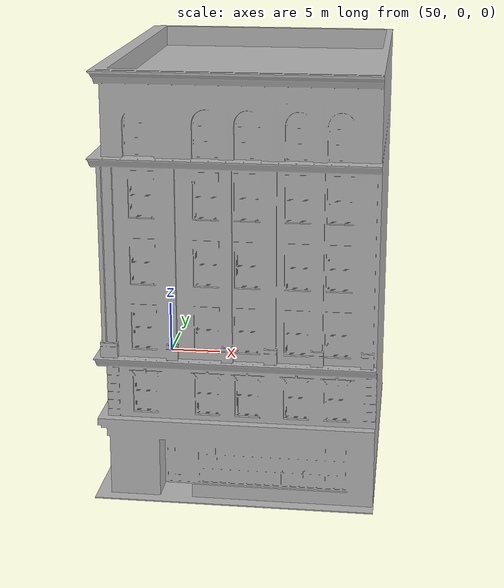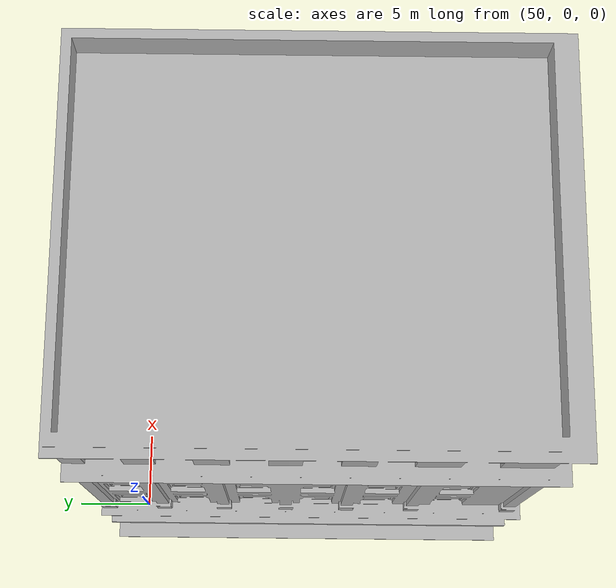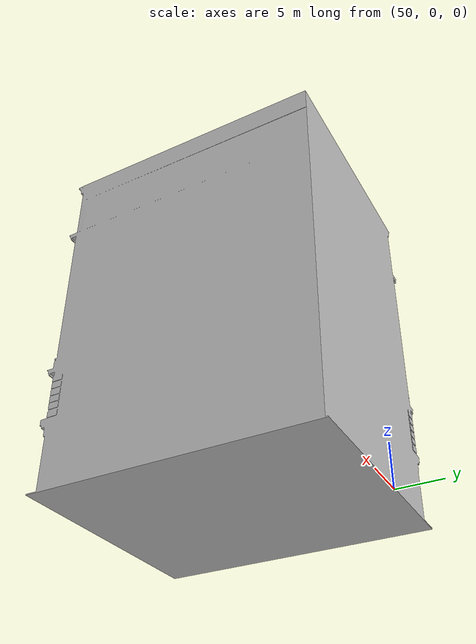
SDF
<?xml version="1.0"?>
<sdf version="1.6">
  <model name="tall">
    <pose>0 0 0 0 0 0</pose>
    <static>true</static>

    <link name="link">
      <!-- 视觉外观: 带 triplanar UV + brick 纹理的 OBJ
           bbox ~ 23.7 x 28.2 x 36.7 m, 用作"高建筑"扫描目标 -->
      <visual name="visual">
        <geometry>
          <mesh>
            <uri>model://tall.stl</uri>
            <scale>1.0 1.0 1.0</scale>
          </mesh>
        </geometry>
      </visual>

      <!-- 碰撞几何: 简化为 5 x 3 x 30 m 立方体
           pose 放在原 mesh bbox 中心 (59.85, -11.525, 14.57), 让碰撞体覆盖模型主体 -->
      <collision name="collision">
        <pose>59.85 -11.525 14.57 0 0 0</pose>
        <geometry>
          <box>
            <size>5 3 30</size>
          </box>
        </geometry>
      </collision>

      <!-- static=true 时质量/惯量不参与物理, 但 SDF 规范要求字段存在 -->
      <inertial>
        <mass>1.0</mass>
        <pose>0 0 0 0 0 0</pose>
        <inertia>
          <ixx>1.0</ixx>
          <ixy>0.0</ixy>
          <ixz>0.0</ixz>
          <iyy>1.0</iyy>
          <iyz>0.0</iyz>
          <izz>1.0</izz>
        </inertia>
      </inertial>
    </link>
  </model>
</sdf>
